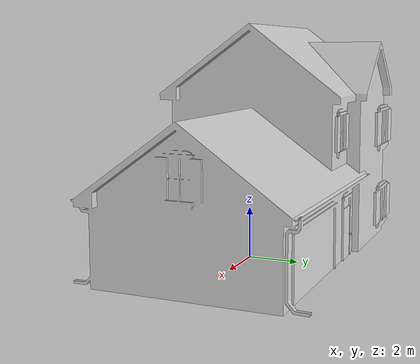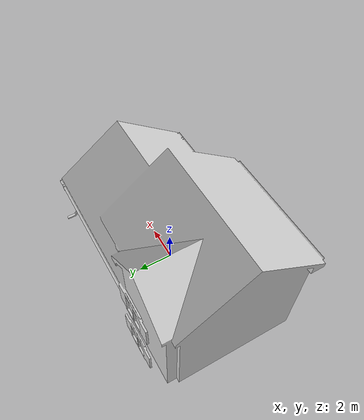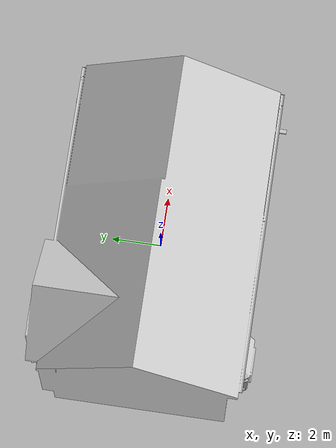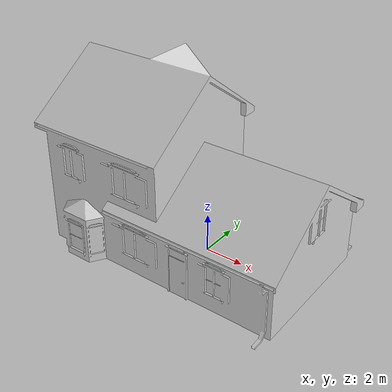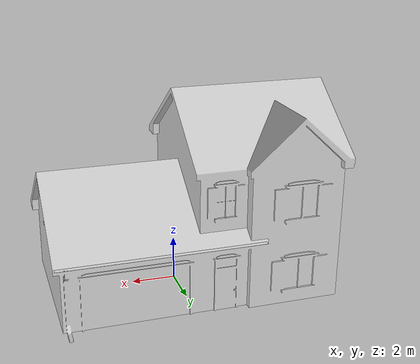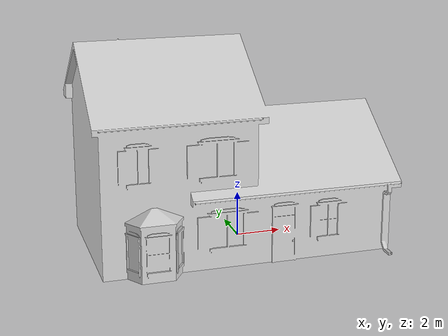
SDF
<?xml version="1.0" ?>
<sdf version="1.5">
  <model name="House 3">
    <static>true</static>
    <link name="link">
      <collision name="collision">
        <geometry>
          <mesh>
            <uri>model://house_3/meshes/house_3.dae</uri>
            <scale>1.5 1.5 1.5</scale>
          </mesh>
        </geometry>
      </collision>
      <visual name="visual">
        <geometry>
          <mesh>
            <uri>model://house_3/meshes/house_3.dae</uri>
            <scale>1.5 1.5 1.5</scale>
          </mesh>
        </geometry>
        <material>
          <script>
            <uri>model://house_3/materials/scripts</uri>
            <uri>model://house_3/materials/textures</uri>
            <uri>model://house_1/materials/textures</uri>
            <name>House_3/Diffuse</name>
          </script>
        </material>
      </visual>
    </link>
  </model>
</sdf>
